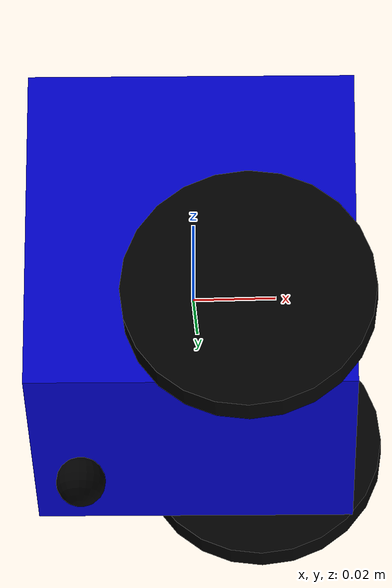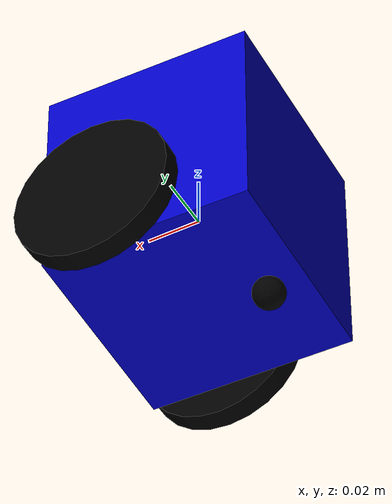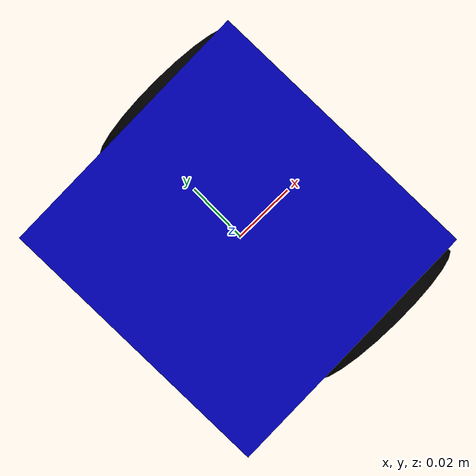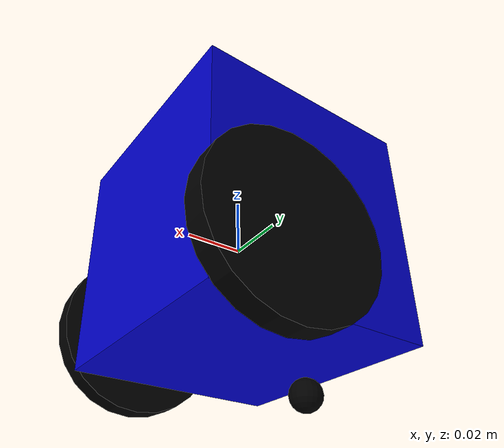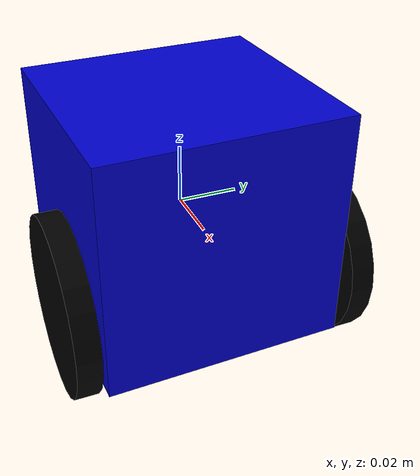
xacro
<?xml version="1.0"?>

<robot xmlns:xacro="http://www.ros.org/wiki/xacro" name="arbot">
    <xacro:include filename="inertial_macros.xacro" />

    <material name="blue">
        <color rgba="0 0 0.8 1" />
    </material>
    <material name="neon_blue">
        <color rgba="0 100 255 1" />
    </material>
    <material name="black">
        <color rgba="0 0 0 1" />
    </material>

    <link name="base_link">
        <visual>
            <origin rpy="0 0 0.03" xyz="0 0 0" />

            <geometry>
                <box size="0.078 0.082 0.08" />
            </geometry>
            <material name="blue" />
        </visual>
        <collision>
            <geometry>
                <box size="0.078 0.082 0.08" />
            </geometry>
        </collision>
        <xacro:solid_cuboid_inertia mass="0.05" height="0.08" depth="0.082" width="0.078">
            <origin rpy="0 0 0.03" xyz="0 0 0" />
        </xacro:solid_cuboid_inertia>
    </link>

    <joint name="right_wheel_joint" type="continuous">
        <axis rpy="0 0 0" xyz="0 0 1" />
        <parent link="base_link" />
        <child link="right_wheel" />
        <origin rpy="1.57075 0 0" xyz="0.015 -0.046 -0.02" />
    </joint>
    <link name="right_wheel">
        <visual>
            <geometry>
                <cylinder length="0.008" radius="0.03" />
            </geometry>
            <material name="black" />
        </visual>
        <collision>
            <geometry>
                <cylinder length="0.008" radius="0.03" />
            </geometry>
        </collision>
        <xacro:solid_cylinder_inertia mass="0.01" height="0.008" radius="0.03">
            <origin rpy="0 0 0" xyz="0 0 0" />
        </xacro:solid_cylinder_inertia>
    </link>

    <joint name="left_wheel_joint" type="continuous">
        <axis rpy="0 0 0" xyz="0 0 1" />
        <parent link="base_link" />
        <child link="left_wheel" />
        <origin rpy="1.57075 0 0" xyz="0.015 0.046 -0.02" />
    </joint>
    <link name="left_wheel">
        <visual>
            <geometry>
                <cylinder length="0.008" radius="0.03" />
            </geometry>
            <material name="black" />
        </visual>
        <collision>
            <geometry>
                <cylinder length="0.008" radius="0.03" />
            </geometry>
        </collision>
        <xacro:solid_cylinder_inertia mass="0.01 " height="0.008" radius="0.03">
            <origin rpy="0 0 0" xyz="0 0 0" />
        </xacro:solid_cylinder_inertia>
    </link>

    <joint name="caster_wheel_joint" type="fixed">
        <parent link="base_link" />
        <child link="caster_wheel" />
        <origin rpy="0 0 0" xyz="-0.027 0 -0.0475" />
    </joint>
    <link name="caster_wheel">
        <visual>
            <geometry>
                <sphere radius="0.006" />
            </geometry>
            <material name="black" />
        </visual>
        <collision>
            <geometry>
                <sphere radius="0.006" />
            </geometry>
        </collision>
        <xacro:solid_sphere_inertia mass="0.01" radius="0.006">
            <origin rpy="0 0 0" xyz="0 0 0" />
        </xacro:solid_sphere_inertia>
        <contact>
            <lateral_friction value="0.0" />
            <rolling_friction value="0.0" />
        </contact>
    </link>

</robot>

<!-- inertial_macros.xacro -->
<robot xmlns:xacro="http://www.ros.org/wiki/xacro">

    <!-- Specify some standard inertial calculations
    https://en.wikipedia.org/wiki/List_of_moments_of_inertia -->
    <!-- These make use of xacro's mathematical functionality -->

    <xacro:macro name="solid_sphere_inertia" params="mass radius">
        <inertial>
            <mass value="${mass}" />
            <inertia ixx="${(2/5) * mass * (radius*radius)}" ixy="0.0" ixz="0.0"
                iyy="${(2/5) * mass * (radius*radius)}" iyz="0.0"
                izz="${(2/5) * mass * (radius*radius)}" />
        </inertial>
    </xacro:macro>

    <xacro:macro name="solid_cuboid_inertia" params="mass height depth width">
        <inertial>
            <mass value="${mass}" />
            <inertia ixx="${(mass*(height*height+depth*depth))/12}" ixy="0" ixz="0"
                iyy="${(mass*(width*width+depth*depth))/12}" iyz="0"
                izz="${(mass*(width*width+height*height))/12}"
            />
        </inertial>
    </xacro:macro>

    <xacro:macro name="solid_cylinder_inertia" params="mass height radius">
        <inertial>
            <mass value="${mass}" />
            <inertia ixx="${(1/12) * mass * (3*radius*radius + height*height)}" ixy="0.0" ixz="0.0"
                iyy="${(1/12) * mass * (3*radius*radius + height*height)}" iyz="0.0"
                izz="${(1/2) * mass * (radius*radius)}" />
        </inertial>
    </xacro:macro>

</robot>
